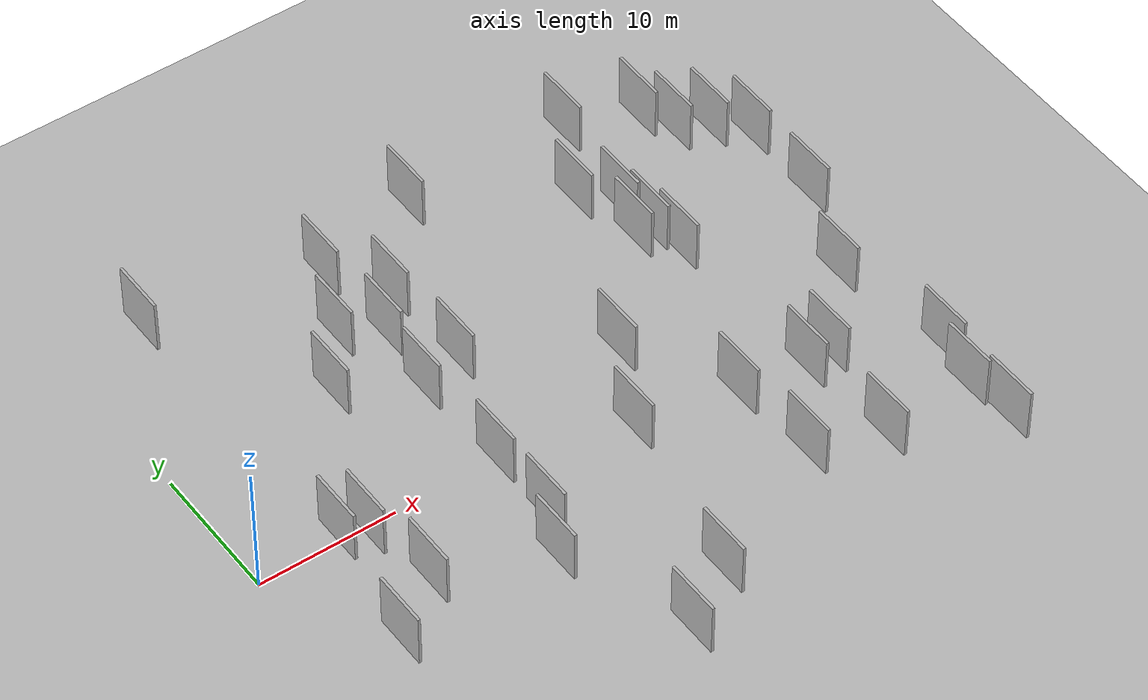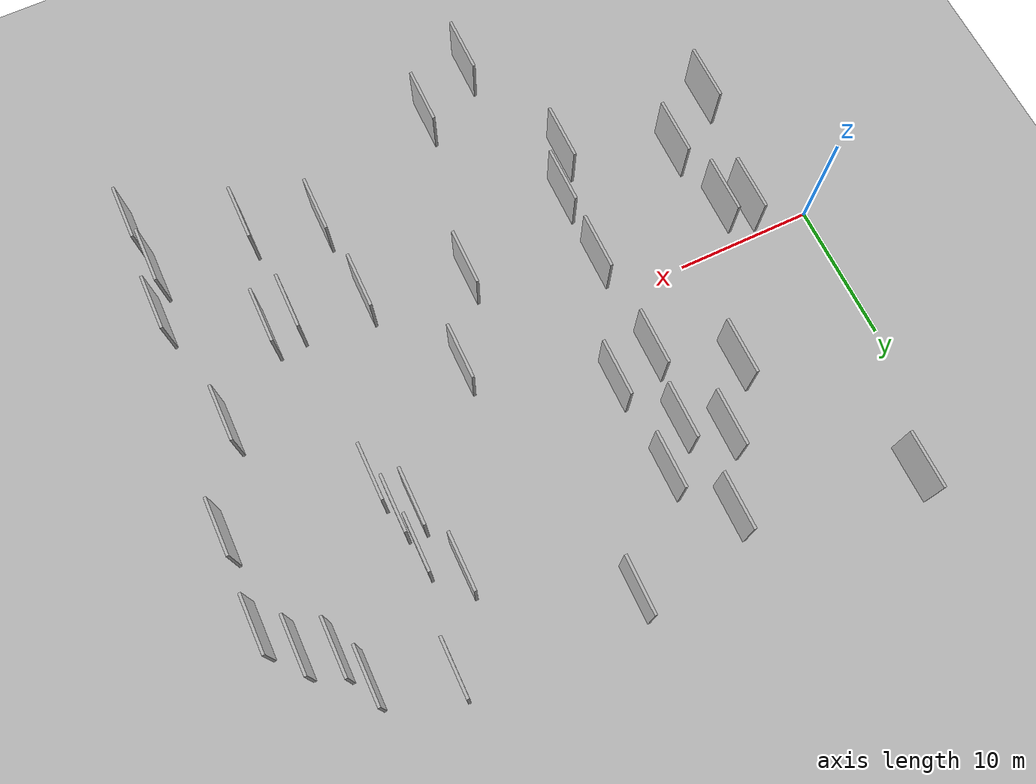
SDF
<?xml version="1.0" encoding="utf-8"?>

<sdf version="1.6">

   <world name="default">

      <gui fullscreen="0">

         <camera name="user_camera">

            <pose>-15 0 4.57585 0 0 0</pose>

            <view_controller>orbit</view_controller>

         </camera>

      </gui>

      <scene>

         <sky>

           <clouds>

             <speed>12</speed>

           </clouds>

         </sky>

         <ambient>0.4 0.4 0.4 1</ambient>

         <background>0.7 0.7 0.7 1</background>

         <shadows>1</shadows>

      </scene>

      <gravity>0 0 -9.8066</gravity>

      <magnetic_field>6e-06 2.3e-05 -4.2e-05</magnetic_field>

      <physics default="0" name="default_physics" type="ode">

         <ode>

            <solver>

               <type>quick</type>

               <iters>10</iters>

               <sor>1.0</sor>

               <use_dynamic_moi_rescaling>0</use_dynamic_moi_rescaling>

            </solver>

            <constraints>

               <cfm>0</cfm>

               <erp>0.2</erp>

               <contact_max_correcting_vel>100</contact_max_correcting_vel>

               <contact_surface_layer>0.001</contact_surface_layer>

            </constraints>

         </ode>

         <max_step_size>0.004</max_step_size>

         <real_time_factor>1</real_time_factor>

         <real_time_update_rate>250</real_time_update_rate>

      </physics>

      <light name="sun" type="directional">

         <cast_shadows>1</cast_shadows>

         <pose>0 0 10 0 0 0</pose>

         <diffuse>0.8 0.8 0.8 1</diffuse>

         <specular>0.2 0.2 0.2 1</specular>

         <attenuation>

            <range>1000</range>

            <constant>0.9</constant>

            <linear>0.01</linear>

            <quadratic>0.001</quadratic>

         </attenuation>

         <direction>-0.5 0.1 -0.9</direction>

      </light>

      <include>

         <name>ground_plane_1</name>

         <uri>model://HANNAS_ground_plane</uri>

         <pose>0 0 0  0 0 0</pose>

      </include>

      <include>

         <name>ground_plane_2</name>

         <uri>model://HANNAS_ground_plane</uri>

         <pose>100 0 0  0 0 0</pose>

      </include>

      <model name="HANNAS_wall_1">

         <static>1</static>

         <pose frame="">44.4189 -10.5357 2.5 0.000000 0.000000 1.570796</pose>

         <link name="link">

            <pose frame="">0 0 2.00 0 0 0</pose>

            <collision name="collision">

               <geometry>

                  <box>

                     <size>4.00 0.2 4.00</size>

                  </box>

               </geometry>

               <max_contacts>10</max_contacts>

               <surface>

                  <contact>

                     <ode/>

                  </contact>

                  <bounce/>

                  <friction>

                     <torsional>

                        <ode/>

                     </torsional>

                     <ode/>

                  </friction>

               </surface>

            </collision>

            <visual name="visual">

               <cast_shadows>0</cast_shadows>

               <geometry>

                  <box>

                     <size>4.00 0.2 4.00</size>

                  </box>

               </geometry>

               <material>

                  <script>

                     <uri>model://HANNAS_wall/materials/scripts</uri>

                     <uri>model://HANNAS_wall/materials/textures</uri>

                     <name>vrc/HANNAS_wall</name>

                  </script>

               </material>

            </visual>

            <self_collide>0</self_collide>

            <enable_wind>0</enable_wind>

            <kinematic>0</kinematic>

         </link>

      </model>

      <model name="HANNAS_wall_2">

         <static>1</static>

         <pose frame="">19.0102 6.3802 2.5 0.000000 0.000000 1.570796</pose>

         <link name="link">

            <pose frame="">0 0 2.00 0 0 0</pose>

            <collision name="collision">

               <geometry>

                  <box>

                     <size>4.00 0.2 4.00</size>

                  </box>

               </geometry>

               <max_contacts>10</max_contacts>

               <surface>

                  <contact>

                     <ode/>

                  </contact>

                  <bounce/>

                  <friction>

                     <torsional>

                        <ode/>

                     </torsional>

                     <ode/>

                  </friction>

               </surface>

            </collision>

            <visual name="visual">

               <cast_shadows>0</cast_shadows>

               <geometry>

                  <box>

                     <size>4.00 0.2 4.00</size>

                  </box>

               </geometry>

               <material>

                  <script>

                     <uri>model://HANNAS_wall/materials/scripts</uri>

                     <uri>model://HANNAS_wall/materials/textures</uri>

                     <name>vrc/HANNAS_wall</name>

                  </script>

               </material>

            </visual>

            <self_collide>0</self_collide>

            <enable_wind>0</enable_wind>

            <kinematic>0</kinematic>

         </link>

      </model>

      <model name="HANNAS_wall_3">

         <static>1</static>

         <pose frame="">16.1510 17.2574 2.5 0.000000 0.000000 1.570796</pose>

         <link name="link">

            <pose frame="">0 0 2.00 0 0 0</pose>

            <collision name="collision">

               <geometry>

                  <box>

                     <size>4.00 0.2 4.00</size>

                  </box>

               </geometry>

               <max_contacts>10</max_contacts>

               <surface>

                  <contact>

                     <ode/>

                  </contact>

                  <bounce/>

                  <friction>

                     <torsional>

                        <ode/>

                     </torsional>

                     <ode/>

                  </friction>

               </surface>

            </collision>

            <visual name="visual">

               <cast_shadows>0</cast_shadows>

               <geometry>

                  <box>

                     <size>4.00 0.2 4.00</size>

                  </box>

               </geometry>

               <material>

                  <script>

                     <uri>model://HANNAS_wall/materials/scripts</uri>

                     <uri>model://HANNAS_wall/materials/textures</uri>

                     <name>vrc/HANNAS_wall</name>

                  </script>

               </material>

            </visual>

            <self_collide>0</self_collide>

            <enable_wind>0</enable_wind>

            <kinematic>0</kinematic>

         </link>

      </model>

      <model name="HANNAS_wall_4">

         <static>1</static>

         <pose frame="">11.0804 8.4962 2.5 0.000000 0.000000 1.570796</pose>

         <link name="link">

            <pose frame="">0 0 2.00 0 0 0</pose>

            <collision name="collision">

               <geometry>

                  <box>

                     <size>4.00 0.2 4.00</size>

                  </box>

               </geometry>

               <max_contacts>10</max_contacts>

               <surface>

                  <contact>

                     <ode/>

                  </contact>

                  <bounce/>

                  <friction>

                     <torsional>

                        <ode/>

                     </torsional>

                     <ode/>

                  </friction>

               </surface>

            </collision>

            <visual name="visual">

               <cast_shadows>0</cast_shadows>

               <geometry>

                  <box>

                     <size>4.00 0.2 4.00</size>

                  </box>

               </geometry>

               <material>

                  <script>

                     <uri>model://HANNAS_wall/materials/scripts</uri>

                     <uri>model://HANNAS_wall/materials/textures</uri>

                     <name>vrc/HANNAS_wall</name>

                  </script>

               </material>

            </visual>

            <self_collide>0</self_collide>

            <enable_wind>0</enable_wind>

            <kinematic>0</kinematic>

         </link>

      </model>

      <model name="HANNAS_wall_5">

         <static>1</static>

         <pose frame="">7.4637 -7.5072 2.5 0.000000 0.000000 1.570796</pose>

         <link name="link">

            <pose frame="">0 0 2.00 0 0 0</pose>

            <collision name="collision">

               <geometry>

                  <box>

                     <size>4.00 0.2 4.00</size>

                  </box>

               </geometry>

               <max_contacts>10</max_contacts>

               <surface>

                  <contact>

                     <ode/>

                  </contact>

                  <bounce/>

                  <friction>

                     <torsional>

                        <ode/>

                     </torsional>

                     <ode/>

                  </friction>

               </surface>

            </collision>

            <visual name="visual">

               <cast_shadows>0</cast_shadows>

               <geometry>

                  <box>

                     <size>4.00 0.2 4.00</size>

                  </box>

               </geometry>

               <material>

                  <script>

                     <uri>model://HANNAS_wall/materials/scripts</uri>

                     <uri>model://HANNAS_wall/materials/textures</uri>

                     <name>vrc/HANNAS_wall</name>

                  </script>

               </material>

            </visual>

            <self_collide>0</self_collide>

            <enable_wind>0</enable_wind>

            <kinematic>0</kinematic>

         </link>

      </model>

      <model name="HANNAS_wall_6">

         <static>1</static>

         <pose frame="">36.9641 -14.2212 2.5 0.000000 0.000000 1.570796</pose>

         <link name="link">

            <pose frame="">0 0 2.00 0 0 0</pose>

            <collision name="collision">

               <geometry>

                  <box>

                     <size>4.00 0.2 4.00</size>

                  </box>

               </geometry>

               <max_contacts>10</max_contacts>

               <surface>

                  <contact>

                     <ode/>

                  </contact>

                  <bounce/>

                  <friction>

                     <torsional>

                        <ode/>

                     </torsional>

                     <ode/>

                  </friction>

               </surface>

            </collision>

            <visual name="visual">

               <cast_shadows>0</cast_shadows>

               <geometry>

                  <box>

                     <size>4.00 0.2 4.00</size>

                  </box>

               </geometry>

               <material>

                  <script>

                     <uri>model://HANNAS_wall/materials/scripts</uri>

                     <uri>model://HANNAS_wall/materials/textures</uri>

                     <name>vrc/HANNAS_wall</name>

                  </script>

               </material>

            </visual>

            <self_collide>0</self_collide>

            <enable_wind>0</enable_wind>

            <kinematic>0</kinematic>

         </link>

      </model>

      <model name="HANNAS_wall_7">

         <static>1</static>

         <pose frame="">16.5284 10.6545 2.5 0.000000 0.000000 1.570796</pose>

         <link name="link">

            <pose frame="">0 0 2.00 0 0 0</pose>

            <collision name="collision">

               <geometry>

                  <box>

                     <size>4.00 0.2 4.00</size>

                  </box>

               </geometry>

               <max_contacts>10</max_contacts>

               <surface>

                  <contact>

                     <ode/>

                  </contact>

                  <bounce/>

                  <friction>

                     <torsional>

                        <ode/>

                     </torsional>

                     <ode/>

                  </friction>

               </surface>

            </collision>

            <visual name="visual">

               <cast_shadows>0</cast_shadows>

               <geometry>

                  <box>

                     <size>4.00 0.2 4.00</size>

                  </box>

               </geometry>

               <material>

                  <script>

                     <uri>model://HANNAS_wall/materials/scripts</uri>

                     <uri>model://HANNAS_wall/materials/textures</uri>

                     <name>vrc/HANNAS_wall</name>

                  </script>

               </material>

            </visual>

            <self_collide>0</self_collide>

            <enable_wind>0</enable_wind>

            <kinematic>0</kinematic>

         </link>

      </model>

      <model name="HANNAS_wall_8">

         <static>1</static>

         <pose frame="">15.8831 5.4989 2.5 0.000000 0.000000 1.570796</pose>

         <link name="link">

            <pose frame="">0 0 2.00 0 0 0</pose>

            <collision name="collision">

               <geometry>

                  <box>

                     <size>4.00 0.2 4.00</size>

                  </box>

               </geometry>

               <max_contacts>10</max_contacts>

               <surface>

                  <contact>

                     <ode/>

                  </contact>

                  <bounce/>

                  <friction>

                     <torsional>

                        <ode/>

                     </torsional>

                     <ode/>

                  </friction>

               </surface>

            </collision>

            <visual name="visual">

               <cast_shadows>0</cast_shadows>

               <geometry>

                  <box>

                     <size>4.00 0.2 4.00</size>

                  </box>

               </geometry>

               <material>

                  <script>

                     <uri>model://HANNAS_wall/materials/scripts</uri>

                     <uri>model://HANNAS_wall/materials/textures</uri>

                     <name>vrc/HANNAS_wall</name>

                  </script>

               </material>

            </visual>

            <self_collide>0</self_collide>

            <enable_wind>0</enable_wind>

            <kinematic>0</kinematic>

         </link>

      </model>

      <model name="HANNAS_wall_9">

         <static>1</static>

         <pose frame="">34.2519 8.4210 2.5 0.000000 0.000000 1.570796</pose>

         <link name="link">

            <pose frame="">0 0 2.00 0 0 0</pose>

            <collision name="collision">

               <geometry>

                  <box>

                     <size>4.00 0.2 4.00</size>

                  </box>

               </geometry>

               <max_contacts>10</max_contacts>

               <surface>

                  <contact>

                     <ode/>

                  </contact>

                  <bounce/>

                  <friction>

                     <torsional>

                        <ode/>

                     </torsional>

                     <ode/>

                  </friction>

               </surface>

            </collision>

            <visual name="visual">

               <cast_shadows>0</cast_shadows>

               <geometry>

                  <box>

                     <size>4.00 0.2 4.00</size>

                  </box>

               </geometry>

               <material>

                  <script>

                     <uri>model://HANNAS_wall/materials/scripts</uri>

                     <uri>model://HANNAS_wall/materials/textures</uri>

                     <name>vrc/HANNAS_wall</name>

                  </script>

               </material>

            </visual>

            <self_collide>0</self_collide>

            <enable_wind>0</enable_wind>

            <kinematic>0</kinematic>

         </link>

      </model>

      <model name="HANNAS_wall_10">

         <static>1</static>

         <pose frame="">31.5944 -6.2207 2.5 0.000000 0.000000 1.570796</pose>

         <link name="link">

            <pose frame="">0 0 2.00 0 0 0</pose>

            <collision name="collision">

               <geometry>

                  <box>

                     <size>4.00 0.2 4.00</size>

                  </box>

               </geometry>

               <max_contacts>10</max_contacts>

               <surface>

                  <contact>

                     <ode/>

                  </contact>

                  <bounce/>

                  <friction>

                     <torsional>

                        <ode/>

                     </torsional>

                     <ode/>

                  </friction>

               </surface>

            </collision>

            <visual name="visual">

               <cast_shadows>0</cast_shadows>

               <geometry>

                  <box>

                     <size>4.00 0.2 4.00</size>

                  </box>

               </geometry>

               <material>

                  <script>

                     <uri>model://HANNAS_wall/materials/scripts</uri>

                     <uri>model://HANNAS_wall/materials/textures</uri>

                     <name>vrc/HANNAS_wall</name>

                  </script>

               </material>

            </visual>

            <self_collide>0</self_collide>

            <enable_wind>0</enable_wind>

            <kinematic>0</kinematic>

         </link>

      </model>

      <model name="HANNAS_wall_11">

         <static>1</static>

         <pose frame="">35.1379 11.1432 2.5 0.000000 0.000000 1.570796</pose>

         <link name="link">

            <pose frame="">0 0 2.00 0 0 0</pose>

            <collision name="collision">

               <geometry>

                  <box>

                     <size>4.00 0.2 4.00</size>

                  </box>

               </geometry>

               <max_contacts>10</max_contacts>

               <surface>

                  <contact>

                     <ode/>

                  </contact>

                  <bounce/>

                  <friction>

                     <torsional>

                        <ode/>

                     </torsional>

                     <ode/>

                  </friction>

               </surface>

            </collision>

            <visual name="visual">

               <cast_shadows>0</cast_shadows>

               <geometry>

                  <box>

                     <size>4.00 0.2 4.00</size>

                  </box>

               </geometry>

               <material>

                  <script>

                     <uri>model://HANNAS_wall/materials/scripts</uri>

                     <uri>model://HANNAS_wall/materials/textures</uri>

                     <name>vrc/HANNAS_wall</name>

                  </script>

               </material>

            </visual>

            <self_collide>0</self_collide>

            <enable_wind>0</enable_wind>

            <kinematic>0</kinematic>

         </link>

      </model>

      <model name="HANNAS_wall_12">

         <static>1</static>

         <pose frame="">32.1168 -12.5971 2.5 0.000000 0.000000 1.570796</pose>

         <link name="link">

            <pose frame="">0 0 2.00 0 0 0</pose>

            <collision name="collision">

               <geometry>

                  <box>

                     <size>4.00 0.2 4.00</size>

                  </box>

               </geometry>

               <max_contacts>10</max_contacts>

               <surface>

                  <contact>

                     <ode/>

                  </contact>

                  <bounce/>

                  <friction>

                     <torsional>

                        <ode/>

                     </torsional>

                     <ode/>

                  </friction>

               </surface>

            </collision>

            <visual name="visual">

               <cast_shadows>0</cast_shadows>

               <geometry>

                  <box>

                     <size>4.00 0.2 4.00</size>

                  </box>

               </geometry>

               <material>

                  <script>

                     <uri>model://HANNAS_wall/materials/scripts</uri>

                     <uri>model://HANNAS_wall/materials/textures</uri>

                     <name>vrc/HANNAS_wall</name>

                  </script>

               </material>

            </visual>

            <self_collide>0</self_collide>

            <enable_wind>0</enable_wind>

            <kinematic>0</kinematic>

         </link>

      </model>

      <model name="HANNAS_wall_13">

         <static>1</static>

         <pose frame="">16.1172 -7.4408 2.5 0.000000 0.000000 1.570796</pose>

         <link name="link">

            <pose frame="">0 0 2.00 0 0 0</pose>

            <collision name="collision">

               <geometry>

                  <box>

                     <size>4.00 0.2 4.00</size>

                  </box>

               </geometry>

               <max_contacts>10</max_contacts>

               <surface>

                  <contact>

                     <ode/>

                  </contact>

                  <bounce/>

                  <friction>

                     <torsional>

                        <ode/>

                     </torsional>

                     <ode/>

                  </friction>

               </surface>

            </collision>

            <visual name="visual">

               <cast_shadows>0</cast_shadows>

               <geometry>

                  <box>

                     <size>4.00 0.2 4.00</size>

                  </box>

               </geometry>

               <material>

                  <script>

                     <uri>model://HANNAS_wall/materials/scripts</uri>

                     <uri>model://HANNAS_wall/materials/textures</uri>

                     <name>vrc/HANNAS_wall</name>

                  </script>

               </material>

            </visual>

            <self_collide>0</self_collide>

            <enable_wind>0</enable_wind>

            <kinematic>0</kinematic>

         </link>

      </model>

      <model name="HANNAS_wall_14">

         <static>1</static>

         <pose frame="">45.9251 11.4316 2.5 0.000000 0.000000 1.570796</pose>

         <link name="link">

            <pose frame="">0 0 2.00 0 0 0</pose>

            <collision name="collision">

               <geometry>

                  <box>

                     <size>4.00 0.2 4.00</size>

                  </box>

               </geometry>

               <max_contacts>10</max_contacts>

               <surface>

                  <contact>

                     <ode/>

                  </contact>

                  <bounce/>

                  <friction>

                     <torsional>

                        <ode/>

                     </torsional>

                     <ode/>

                  </friction>

               </surface>

            </collision>

            <visual name="visual">

               <cast_shadows>0</cast_shadows>

               <geometry>

                  <box>

                     <size>4.00 0.2 4.00</size>

                  </box>

               </geometry>

               <material>

                  <script>

                     <uri>model://HANNAS_wall/materials/scripts</uri>

                     <uri>model://HANNAS_wall/materials/textures</uri>

                     <name>vrc/HANNAS_wall</name>

                  </script>

               </material>

            </visual>

            <self_collide>0</self_collide>

            <enable_wind>0</enable_wind>

            <kinematic>0</kinematic>

         </link>

      </model>

      <model name="HANNAS_wall_15">

         <static>1</static>

         <pose frame="">33.1199 13.3673 2.5 0.000000 0.000000 1.570796</pose>

         <link name="link">

            <pose frame="">0 0 2.00 0 0 0</pose>

            <collision name="collision">

               <geometry>

                  <box>

                     <size>4.00 0.2 4.00</size>

                  </box>

               </geometry>

               <max_contacts>10</max_contacts>

               <surface>

                  <contact>

                     <ode/>

                  </contact>

                  <bounce/>

                  <friction>

                     <torsional>

                        <ode/>

                     </torsional>

                     <ode/>

                  </friction>

               </surface>

            </collision>

            <visual name="visual">

               <cast_shadows>0</cast_shadows>

               <geometry>

                  <box>

                     <size>4.00 0.2 4.00</size>

                  </box>

               </geometry>

               <material>

                  <script>

                     <uri>model://HANNAS_wall/materials/scripts</uri>

                     <uri>model://HANNAS_wall/materials/textures</uri>

                     <name>vrc/HANNAS_wall</name>

                  </script>

               </material>

            </visual>

            <self_collide>0</self_collide>

            <enable_wind>0</enable_wind>

            <kinematic>0</kinematic>

         </link>

      </model>

      <model name="HANNAS_wall_16">

         <static>1</static>

         <pose frame="">18.7229 13.1875 2.5 0.000000 0.000000 1.570796</pose>

         <link name="link">

            <pose frame="">0 0 2.00 0 0 0</pose>

            <collision name="collision">

               <geometry>

                  <box>

                     <size>4.00 0.2 4.00</size>

                  </box>

               </geometry>

               <max_contacts>10</max_contacts>

               <surface>

                  <contact>

                     <ode/>

                  </contact>

                  <bounce/>

                  <friction>

                     <torsional>

                        <ode/>

                     </torsional>

                     <ode/>

                  </friction>

               </surface>

            </collision>

            <visual name="visual">

               <cast_shadows>0</cast_shadows>

               <geometry>

                  <box>

                     <size>4.00 0.2 4.00</size>

                  </box>

               </geometry>

               <material>

                  <script>

                     <uri>model://HANNAS_wall/materials/scripts</uri>

                     <uri>model://HANNAS_wall/materials/textures</uri>

                     <name>vrc/HANNAS_wall</name>

                  </script>

               </material>

            </visual>

            <self_collide>0</self_collide>

            <enable_wind>0</enable_wind>

            <kinematic>0</kinematic>

         </link>

      </model>

      <model name="HANNAS_wall_17">

         <static>1</static>

         <pose frame="">35.9671 5.8900 2.5 0.000000 0.000000 1.570796</pose>

         <link name="link">

            <pose frame="">0 0 2.00 0 0 0</pose>

            <collision name="collision">

               <geometry>

                  <box>

                     <size>4.00 0.2 4.00</size>

                  </box>

               </geometry>

               <max_contacts>10</max_contacts>

               <surface>

                  <contact>

                     <ode/>

                  </contact>

                  <bounce/>

                  <friction>

                     <torsional>

                        <ode/>

                     </torsional>

                     <ode/>

                  </friction>

               </surface>

            </collision>

            <visual name="visual">

               <cast_shadows>0</cast_shadows>

               <geometry>

                  <box>

                     <size>4.00 0.2 4.00</size>

                  </box>

               </geometry>

               <material>

                  <script>

                     <uri>model://HANNAS_wall/materials/scripts</uri>

                     <uri>model://HANNAS_wall/materials/textures</uri>

                     <name>vrc/HANNAS_wall</name>

                  </script>

               </material>

            </visual>

            <self_collide>0</self_collide>

            <enable_wind>0</enable_wind>

            <kinematic>0</kinematic>

         </link>

      </model>

      <model name="HANNAS_wall_18">

         <static>1</static>

         <pose frame="">4.3287 19.9816 2.5 0.000000 0.000000 1.570796</pose>

         <link name="link">

            <pose frame="">0 0 2.00 0 0 0</pose>

            <collision name="collision">

               <geometry>

                  <box>

                     <size>4.00 0.2 4.00</size>

                  </box>

               </geometry>

               <max_contacts>10</max_contacts>

               <surface>

                  <contact>

                     <ode/>

                  </contact>

                  <bounce/>

                  <friction>

                     <torsional>

                        <ode/>

                     </torsional>

                     <ode/>

                  </friction>

               </surface>

            </collision>

            <visual name="visual">

               <cast_shadows>0</cast_shadows>

               <geometry>

                  <box>

                     <size>4.00 0.2 4.00</size>

                  </box>

               </geometry>

               <material>

                  <script>

                     <uri>model://HANNAS_wall/materials/scripts</uri>

                     <uri>model://HANNAS_wall/materials/textures</uri>

                     <name>vrc/HANNAS_wall</name>

                  </script>

               </material>

            </visual>

            <self_collide>0</self_collide>

            <enable_wind>0</enable_wind>

            <kinematic>0</kinematic>

         </link>

      </model>

      <model name="HANNAS_wall_19">

         <static>1</static>

         <pose frame="">36.4033 -6.9017 2.5 0.000000 0.000000 1.570796</pose>

         <link name="link">

            <pose frame="">0 0 2.00 0 0 0</pose>

            <collision name="collision">

               <geometry>

                  <box>

                     <size>4.00 0.2 4.00</size>

                  </box>

               </geometry>

               <max_contacts>10</max_contacts>

               <surface>

                  <contact>

                     <ode/>

                  </contact>

                  <bounce/>

                  <friction>

                     <torsional>

                        <ode/>

                     </torsional>

                     <ode/>

                  </friction>

               </surface>

            </collision>

            <visual name="visual">

               <cast_shadows>0</cast_shadows>

               <geometry>

                  <box>

                     <size>4.00 0.2 4.00</size>

                  </box>

               </geometry>

               <material>

                  <script>

                     <uri>model://HANNAS_wall/materials/scripts</uri>

                     <uri>model://HANNAS_wall/materials/textures</uri>

                     <name>vrc/HANNAS_wall</name>

                  </script>

               </material>

            </visual>

            <self_collide>0</self_collide>

            <enable_wind>0</enable_wind>

            <kinematic>0</kinematic>

         </link>

      </model>

      <model name="HANNAS_wall_20">

         <static>1</static>

         <pose frame="">4.8397 -1.5209 2.5 0.000000 0.000000 1.570796</pose>

         <link name="link">

            <pose frame="">0 0 2.00 0 0 0</pose>

            <collision name="collision">

               <geometry>

                  <box>

                     <size>4.00 0.2 4.00</size>

                  </box>

               </geometry>

               <max_contacts>10</max_contacts>

               <surface>

                  <contact>

                     <ode/>

                  </contact>

                  <bounce/>

                  <friction>

                     <torsional>

                        <ode/>

                     </torsional>

                     <ode/>

                  </friction>

               </surface>

            </collision>

            <visual name="visual">

               <cast_shadows>0</cast_shadows>

               <geometry>

                  <box>

                     <size>4.00 0.2 4.00</size>

                  </box>

               </geometry>

               <material>

                  <script>

                     <uri>model://HANNAS_wall/materials/scripts</uri>

                     <uri>model://HANNAS_wall/materials/textures</uri>

                     <name>vrc/HANNAS_wall</name>

                  </script>

               </material>

            </visual>

            <self_collide>0</self_collide>

            <enable_wind>0</enable_wind>

            <kinematic>0</kinematic>

         </link>

      </model>

      <model name="HANNAS_wall_21">

         <static>1</static>

         <pose frame="">27.6329 1.0886 2.5 0.000000 0.000000 1.570796</pose>

         <link name="link">

            <pose frame="">0 0 2.00 0 0 0</pose>

            <collision name="collision">

               <geometry>

                  <box>

                     <size>4.00 0.2 4.00</size>

                  </box>

               </geometry>

               <max_contacts>10</max_contacts>

               <surface>

                  <contact>

                     <ode/>

                  </contact>

                  <bounce/>

                  <friction>

                     <torsional>

                        <ode/>

                     </torsional>

                     <ode/>

                  </friction>

               </surface>

            </collision>

            <visual name="visual">

               <cast_shadows>0</cast_shadows>

               <geometry>

                  <box>

                     <size>4.00 0.2 4.00</size>

                  </box>

               </geometry>

               <material>

                  <script>

                     <uri>model://HANNAS_wall/materials/scripts</uri>

                     <uri>model://HANNAS_wall/materials/textures</uri>

                     <name>vrc/HANNAS_wall</name>

                  </script>

               </material>

            </visual>

            <self_collide>0</self_collide>

            <enable_wind>0</enable_wind>

            <kinematic>0</kinematic>

         </link>

      </model>

      <model name="HANNAS_wall_22">

         <static>1</static>

         <pose frame="">13.9775 12.3868 2.5 0.000000 0.000000 1.570796</pose>

         <link name="link">

            <pose frame="">0 0 2.00 0 0 0</pose>

            <collision name="collision">

               <geometry>

                  <box>

                     <size>4.00 0.2 4.00</size>

                  </box>

               </geometry>

               <max_contacts>10</max_contacts>

               <surface>

                  <contact>

                     <ode/>

                  </contact>

                  <bounce/>

                  <friction>

                     <torsional>

                        <ode/>

                     </torsional>

                     <ode/>

                  </friction>

               </surface>

            </collision>

            <visual name="visual">

               <cast_shadows>0</cast_shadows>

               <geometry>

                  <box>

                     <size>4.00 0.2 4.00</size>

                  </box>

               </geometry>

               <material>

                  <script>

                     <uri>model://HANNAS_wall/materials/scripts</uri>

                     <uri>model://HANNAS_wall/materials/textures</uri>

                     <name>vrc/HANNAS_wall</name>

                  </script>

               </material>

            </visual>

            <self_collide>0</self_collide>

            <enable_wind>0</enable_wind>

            <kinematic>0</kinematic>

         </link>

      </model>

      <model name="HANNAS_wall_23">

         <static>1</static>

         <pose frame="">35.4626 8.3334 2.5 0.000000 0.000000 1.570796</pose>

         <link name="link">

            <pose frame="">0 0 2.00 0 0 0</pose>

            <collision name="collision">

               <geometry>

                  <box>

                     <size>4.00 0.2 4.00</size>

                  </box>

               </geometry>

               <max_contacts>10</max_contacts>

               <surface>

                  <contact>

                     <ode/>

                  </contact>

                  <bounce/>

                  <friction>

                     <torsional>

                        <ode/>

                     </torsional>

                     <ode/>

                  </friction>

               </surface>

            </collision>

            <visual name="visual">

               <cast_shadows>0</cast_shadows>

               <geometry>

                  <box>

                     <size>4.00 0.2 4.00</size>

                  </box>

               </geometry>

               <material>

                  <script>

                     <uri>model://HANNAS_wall/materials/scripts</uri>

                     <uri>model://HANNAS_wall/materials/textures</uri>

                     <name>vrc/HANNAS_wall</name>

                  </script>

               </material>

            </visual>

            <self_collide>0</self_collide>

            <enable_wind>0</enable_wind>

            <kinematic>0</kinematic>

         </link>

      </model>

      <model name="HANNAS_wall_24">

         <static>1</static>

         <pose frame="">38.3043 -6.6777 2.5 0.000000 0.000000 1.570796</pose>

         <link name="link">

            <pose frame="">0 0 2.00 0 0 0</pose>

            <collision name="collision">

               <geometry>

                  <box>

                     <size>4.00 0.2 4.00</size>

                  </box>

               </geometry>

               <max_contacts>10</max_contacts>

               <surface>

                  <contact>

                     <ode/>

                  </contact>

                  <bounce/>

                  <friction>

                     <torsional>

                        <ode/>

                     </torsional>

                     <ode/>

                  </friction>

               </surface>

            </collision>

            <visual name="visual">

               <cast_shadows>0</cast_shadows>

               <geometry>

                  <box>

                     <size>4.00 0.2 4.00</size>

                  </box>

               </geometry>

               <material>

                  <script>

                     <uri>model://HANNAS_wall/materials/scripts</uri>

                     <uri>model://HANNAS_wall/materials/textures</uri>

                     <name>vrc/HANNAS_wall</name>

                  </script>

               </material>

            </visual>

            <self_collide>0</self_collide>

            <enable_wind>0</enable_wind>

            <kinematic>0</kinematic>

         </link>

      </model>

      <model name="HANNAS_wall_25">

         <static>1</static>

         <pose frame="">24.0083 19.2403 2.5 0.000000 0.000000 1.570796</pose>

         <link name="link">

            <pose frame="">0 0 2.00 0 0 0</pose>

            <collision name="collision">

               <geometry>

                  <box>

                     <size>4.00 0.2 4.00</size>

                  </box>

               </geometry>

               <max_contacts>10</max_contacts>

               <surface>

                  <contact>

                     <ode/>

                  </contact>

                  <bounce/>

                  <friction>

                     <torsional>

                        <ode/>

                     </torsional>

                     <ode/>

                  </friction>

               </surface>

            </collision>

            <visual name="visual">

               <cast_shadows>0</cast_shadows>

               <geometry>

                  <box>

                     <size>4.00 0.2 4.00</size>

                  </box>

               </geometry>

               <material>

                  <script>

                     <uri>model://HANNAS_wall/materials/scripts</uri>

                     <uri>model://HANNAS_wall/materials/textures</uri>

                     <name>vrc/HANNAS_wall</name>

                  </script>

               </material>

            </visual>

            <self_collide>0</self_collide>

            <enable_wind>0</enable_wind>

            <kinematic>0</kinematic>

         </link>

      </model>

      <model name="HANNAS_wall_26">

         <static>1</static>

         <pose frame="">43.6344 -13.8992 2.5 0.000000 0.000000 1.570796</pose>

         <link name="link">

            <pose frame="">0 0 2.00 0 0 0</pose>

            <collision name="collision">

               <geometry>

                  <box>

                     <size>4.00 0.2 4.00</size>

                  </box>

               </geometry>

               <max_contacts>10</max_contacts>

               <surface>

                  <contact>

                     <ode/>

                  </contact>

                  <bounce/>

                  <friction>

                     <torsional>

                        <ode/>

                     </torsional>

                     <ode/>

                  </friction>

               </surface>

            </collision>

            <visual name="visual">

               <cast_shadows>0</cast_shadows>

               <geometry>

                  <box>

                     <size>4.00 0.2 4.00</size>

                  </box>

               </geometry>

               <material>

                  <script>

                     <uri>model://HANNAS_wall/materials/scripts</uri>

                     <uri>model://HANNAS_wall/materials/textures</uri>

                     <name>vrc/HANNAS_wall</name>

                  </script>

               </material>

            </visual>

            <self_collide>0</self_collide>

            <enable_wind>0</enable_wind>

            <kinematic>0</kinematic>

         </link>

      </model>

      <model name="HANNAS_wall_27">

         <static>1</static>

         <pose frame="">45.7698 5.0803 2.5 0.000000 0.000000 1.570796</pose>

         <link name="link">

            <pose frame="">0 0 2.00 0 0 0</pose>

            <collision name="collision">

               <geometry>

                  <box>

                     <size>4.00 0.2 4.00</size>

                  </box>

               </geometry>

               <max_contacts>10</max_contacts>

               <surface>

                  <contact>

                     <ode/>

                  </contact>

                  <bounce/>

                  <friction>

                     <torsional>

                        <ode/>

                     </torsional>

                     <ode/>

                  </friction>

               </surface>

            </collision>

            <visual name="visual">

               <cast_shadows>0</cast_shadows>

               <geometry>

                  <box>

                     <size>4.00 0.2 4.00</size>

                  </box>

               </geometry>

               <material>

                  <script>

                     <uri>model://HANNAS_wall/materials/scripts</uri>

                     <uri>model://HANNAS_wall/materials/textures</uri>

                     <name>vrc/HANNAS_wall</name>

                  </script>

               </material>

            </visual>

            <self_collide>0</self_collide>

            <enable_wind>0</enable_wind>

            <kinematic>0</kinematic>

         </link>

      </model>

      <model name="HANNAS_wall_28">

         <static>1</static>

         <pose frame="">6.5296 -2.1680 2.5 0.000000 0.000000 1.570796</pose>

         <link name="link">

            <pose frame="">0 0 2.00 0 0 0</pose>

            <collision name="collision">

               <geometry>

                  <box>

                     <size>4.00 0.2 4.00</size>

                  </box>

               </geometry>

               <max_contacts>10</max_contacts>

               <surface>

                  <contact>

                     <ode/>

                  </contact>

                  <bounce/>

                  <friction>

                     <torsional>

                        <ode/>

                     </torsional>

                     <ode/>

                  </friction>

               </surface>

            </collision>

            <visual name="visual">

               <cast_shadows>0</cast_shadows>

               <geometry>

                  <box>

                     <size>4.00 0.2 4.00</size>

                  </box>

               </geometry>

               <material>

                  <script>

                     <uri>model://HANNAS_wall/materials/scripts</uri>

                     <uri>model://HANNAS_wall/materials/textures</uri>

                     <name>vrc/HANNAS_wall</name>

                  </script>

               </material>

            </visual>

            <self_collide>0</self_collide>

            <enable_wind>0</enable_wind>

            <kinematic>0</kinematic>

         </link>

      </model>

      <model name="HANNAS_wall_29">

         <static>1</static>

         <pose frame="">16.1606 -2.0522 2.5 0.000000 0.000000 1.570796</pose>

         <link name="link">

            <pose frame="">0 0 2.00 0 0 0</pose>

            <collision name="collision">

               <geometry>

                  <box>

                     <size>4.00 0.2 4.00</size>

                  </box>

               </geometry>

               <max_contacts>10</max_contacts>

               <surface>

                  <contact>

                     <ode/>

                  </contact>

                  <bounce/>

                  <friction>

                     <torsional>

                        <ode/>

                     </torsional>

                     <ode/>

                  </friction>

               </surface>

            </collision>

            <visual name="visual">

               <cast_shadows>0</cast_shadows>

               <geometry>

                  <box>

                     <size>4.00 0.2 4.00</size>

                  </box>

               </geometry>

               <material>

                  <script>

                     <uri>model://HANNAS_wall/materials/scripts</uri>

                     <uri>model://HANNAS_wall/materials/textures</uri>

                     <name>vrc/HANNAS_wall</name>

                  </script>

               </material>

            </visual>

            <self_collide>0</self_collide>

            <enable_wind>0</enable_wind>

            <kinematic>0</kinematic>

         </link>

      </model>

      <model name="HANNAS_wall_30">

         <static>1</static>

         <pose frame="">14.7116 -10.4472 2.5 0.000000 0.000000 1.570796</pose>

         <link name="link">

            <pose frame="">0 0 2.00 0 0 0</pose>

            <collision name="collision">

               <geometry>

                  <box>

                     <size>4.00 0.2 4.00</size>

                  </box>

               </geometry>

               <max_contacts>10</max_contacts>

               <surface>

                  <contact>

                     <ode/>

                  </contact>

                  <bounce/>

                  <friction>

                     <torsional>

                        <ode/>

                     </torsional>

                     <ode/>

                  </friction>

               </surface>

            </collision>

            <visual name="visual">

               <cast_shadows>0</cast_shadows>

               <geometry>

                  <box>

                     <size>4.00 0.2 4.00</size>

                  </box>

               </geometry>

               <material>

                  <script>

                     <uri>model://HANNAS_wall/materials/scripts</uri>

                     <uri>model://HANNAS_wall/materials/textures</uri>

                     <name>vrc/HANNAS_wall</name>

                  </script>

               </material>

            </visual>

            <self_collide>0</self_collide>

            <enable_wind>0</enable_wind>

            <kinematic>0</kinematic>

         </link>

      </model>

      <model name="HANNAS_wall_31">

         <static>1</static>

         <pose frame="">44.1422 13.6097 2.5 0.000000 0.000000 1.570796</pose>

         <link name="link">

            <pose frame="">0 0 2.00 0 0 0</pose>

            <collision name="collision">

               <geometry>

                  <box>

                     <size>4.00 0.2 4.00</size>

                  </box>

               </geometry>

               <max_contacts>10</max_contacts>

               <surface>

                  <contact>

                     <ode/>

                  </contact>

                  <bounce/>

                  <friction>

                     <torsional>

                        <ode/>

                     </torsional>

                     <ode/>

                  </friction>

               </surface>

            </collision>

            <visual name="visual">

               <cast_shadows>0</cast_shadows>

               <geometry>

                  <box>

                     <size>4.00 0.2 4.00</size>

                  </box>

               </geometry>

               <material>

                  <script>

                     <uri>model://HANNAS_wall/materials/scripts</uri>

                     <uri>model://HANNAS_wall/materials/textures</uri>

                     <name>vrc/HANNAS_wall</name>

                  </script>

               </material>

            </visual>

            <self_collide>0</self_collide>

            <enable_wind>0</enable_wind>

            <kinematic>0</kinematic>

         </link>

      </model>

      <model name="HANNAS_wall_32">

         <static>1</static>

         <pose frame="">40.9310 17.0685 2.5 0.000000 0.000000 1.570796</pose>

         <link name="link">

            <pose frame="">0 0 2.00 0 0 0</pose>

            <collision name="collision">

               <geometry>

                  <box>

                     <size>4.00 0.2 4.00</size>

                  </box>

               </geometry>

               <max_contacts>10</max_contacts>

               <surface>

                  <contact>

                     <ode/>

                  </contact>

                  <bounce/>

                  <friction>

                     <torsional>

                        <ode/>

                     </torsional>

                     <ode/>

                  </friction>

               </surface>

            </collision>

            <visual name="visual">

               <cast_shadows>0</cast_shadows>

               <geometry>

                  <box>

                     <size>4.00 0.2 4.00</size>

                  </box>

               </geometry>

               <material>

                  <script>

                     <uri>model://HANNAS_wall/materials/scripts</uri>

                     <uri>model://HANNAS_wall/materials/textures</uri>

                     <name>vrc/HANNAS_wall</name>

                  </script>

               </material>

            </visual>

            <self_collide>0</self_collide>

            <enable_wind>0</enable_wind>

            <kinematic>0</kinematic>

         </link>

      </model>

      <model name="HANNAS_wall_33">

         <static>1</static>

         <pose frame="">43.9913 -17.4991 2.5 0.000000 0.000000 1.570796</pose>

         <link name="link">

            <pose frame="">0 0 2.00 0 0 0</pose>

            <collision name="collision">

               <geometry>

                  <box>

                     <size>4.00 0.2 4.00</size>

                  </box>

               </geometry>

               <max_contacts>10</max_contacts>

               <surface>

                  <contact>

                     <ode/>

                  </contact>

                  <bounce/>

                  <friction>

                     <torsional>

                        <ode/>

                     </torsional>

                     <ode/>

                  </friction>

               </surface>

            </collision>

            <visual name="visual">

               <cast_shadows>0</cast_shadows>

               <geometry>

                  <box>

                     <size>4.00 0.2 4.00</size>

                  </box>

               </geometry>

               <material>

                  <script>

                     <uri>model://HANNAS_wall/materials/scripts</uri>

                     <uri>model://HANNAS_wall/materials/textures</uri>

                     <name>vrc/HANNAS_wall</name>

                  </script>

               </material>

            </visual>

            <self_collide>0</self_collide>

            <enable_wind>0</enable_wind>

            <kinematic>0</kinematic>

         </link>

      </model>

      <model name="HANNAS_wall_34">

         <static>1</static>

         <pose frame="">42.0345 14.7428 2.5 0.000000 0.000000 1.570796</pose>

         <link name="link">

            <pose frame="">0 0 2.00 0 0 0</pose>

            <collision name="collision">

               <geometry>

                  <box>

                     <size>4.00 0.2 4.00</size>

                  </box>

               </geometry>

               <max_contacts>10</max_contacts>

               <surface>

                  <contact>

                     <ode/>

                  </contact>

                  <bounce/>

                  <friction>

                     <torsional>

                        <ode/>

                     </torsional>

                     <ode/>

                  </friction>

               </surface>

            </collision>

            <visual name="visual">

               <cast_shadows>0</cast_shadows>

               <geometry>

                  <box>

                     <size>4.00 0.2 4.00</size>

                  </box>

               </geometry>

               <material>

                  <script>

                     <uri>model://HANNAS_wall/materials/scripts</uri>

                     <uri>model://HANNAS_wall/materials/textures</uri>

                     <name>vrc/HANNAS_wall</name>

                  </script>

               </material>

            </visual>

            <self_collide>0</self_collide>

            <enable_wind>0</enable_wind>

            <kinematic>0</kinematic>

         </link>

      </model>

      <model name="HANNAS_wall_35">

         <static>1</static>

         <pose frame="">3.4752 -10.3619 2.5 0.000000 0.000000 1.570796</pose>

         <link name="link">

            <pose frame="">0 0 2.00 0 0 0</pose>

            <collision name="collision">

               <geometry>

                  <box>

                     <size>4.00 0.2 4.00</size>

                  </box>

               </geometry>

               <max_contacts>10</max_contacts>

               <surface>

                  <contact>

                     <ode/>

                  </contact>

                  <bounce/>

                  <friction>

                     <torsional>

                        <ode/>

                     </torsional>

                     <ode/>

                  </friction>

               </surface>

            </collision>

            <visual name="visual">

               <cast_shadows>0</cast_shadows>

               <geometry>

                  <box>

                     <size>4.00 0.2 4.00</size>

                  </box>

               </geometry>

               <material>

                  <script>

                     <uri>model://HANNAS_wall/materials/scripts</uri>

                     <uri>model://HANNAS_wall/materials/textures</uri>

                     <name>vrc/HANNAS_wall</name>

                  </script>

               </material>

            </visual>

            <self_collide>0</self_collide>

            <enable_wind>0</enable_wind>

            <kinematic>0</kinematic>

         </link>

      </model>

      <model name="HANNAS_wall_36">

         <static>1</static>

         <pose frame="">42.9891 -1.5930 2.5 0.000000 0.000000 1.570796</pose>

         <link name="link">

            <pose frame="">0 0 2.00 0 0 0</pose>

            <collision name="collision">

               <geometry>

                  <box>

                     <size>4.00 0.2 4.00</size>

                  </box>

               </geometry>

               <max_contacts>10</max_contacts>

               <surface>

                  <contact>

                     <ode/>

                  </contact>

                  <bounce/>

                  <friction>

                     <torsional>

                        <ode/>

                     </torsional>

                     <ode/>

                  </friction>

               </surface>

            </collision>

            <visual name="visual">

               <cast_shadows>0</cast_shadows>

               <geometry>

                  <box>

                     <size>4.00 0.2 4.00</size>

                  </box>

               </geometry>

               <material>

                  <script>

                     <uri>model://HANNAS_wall/materials/scripts</uri>

                     <uri>model://HANNAS_wall/materials/textures</uri>

                     <name>vrc/HANNAS_wall</name>

                  </script>

               </material>

            </visual>

            <self_collide>0</self_collide>

            <enable_wind>0</enable_wind>

            <kinematic>0</kinematic>

         </link>

      </model>

      <model name="HANNAS_wall_37">

         <static>1</static>

         <pose frame="">22.2531 -17.1387 2.5 0.000000 0.000000 1.570796</pose>

         <link name="link">

            <pose frame="">0 0 2.00 0 0 0</pose>

            <collision name="collision">

               <geometry>

                  <box>

                     <size>4.00 0.2 4.00</size>

                  </box>

               </geometry>

               <max_contacts>10</max_contacts>

               <surface>

                  <contact>

                     <ode/>

                  </contact>

                  <bounce/>

                  <friction>

                     <torsional>

                        <ode/>

                     </torsional>

                     <ode/>

                  </friction>

               </surface>

            </collision>

            <visual name="visual">

               <cast_shadows>0</cast_shadows>

               <geometry>

                  <box>

                     <size>4.00 0.2 4.00</size>

                  </box>

               </geometry>

               <material>

                  <script>

                     <uri>model://HANNAS_wall/materials/scripts</uri>

                     <uri>model://HANNAS_wall/materials/textures</uri>

                     <name>vrc/HANNAS_wall</name>

                  </script>

               </material>

            </visual>

            <self_collide>0</self_collide>

            <enable_wind>0</enable_wind>

            <kinematic>0</kinematic>

         </link>

      </model>

      <model name="HANNAS_wall_38">

         <static>1</static>

         <pose frame="">24.6252 -4.7690 2.5 0.000000 0.000000 1.570796</pose>

         <link name="link">

            <pose frame="">0 0 2.00 0 0 0</pose>

            <collision name="collision">

               <geometry>

                  <box>

                     <size>4.00 0.2 4.00</size>

                  </box>

               </geometry>

               <max_contacts>10</max_contacts>

               <surface>

                  <contact>

                     <ode/>

                  </contact>

                  <bounce/>

                  <friction>

                     <torsional>

                        <ode/>

                     </torsional>

                     <ode/>

                  </friction>

               </surface>

            </collision>

            <visual name="visual">

               <cast_shadows>0</cast_shadows>

               <geometry>

                  <box>

                     <size>4.00 0.2 4.00</size>

                  </box>

               </geometry>

               <material>

                  <script>

                     <uri>model://HANNAS_wall/materials/scripts</uri>

                     <uri>model://HANNAS_wall/materials/textures</uri>

                     <name>vrc/HANNAS_wall</name>

                  </script>

               </material>

            </visual>

            <self_collide>0</self_collide>

            <enable_wind>0</enable_wind>

            <kinematic>0</kinematic>

         </link>

      </model>

      <model name="HANNAS_wall_39">

         <static>1</static>

         <pose frame="">18.0136 -19.7371 2.5 0.000000 0.000000 1.570796</pose>

         <link name="link">

            <pose frame="">0 0 2.00 0 0 0</pose>

            <collision name="collision">

               <geometry>

                  <box>

                     <size>4.00 0.2 4.00</size>

                  </box>

               </geometry>

               <max_contacts>10</max_contacts>

               <surface>

                  <contact>

                     <ode/>

                  </contact>

                  <bounce/>

                  <friction>

                     <torsional>

                        <ode/>

                     </torsional>

                     <ode/>

                  </friction>

               </surface>

            </collision>

            <visual name="visual">

               <cast_shadows>0</cast_shadows>

               <geometry>

                  <box>

                     <size>4.00 0.2 4.00</size>

                  </box>

               </geometry>

               <material>

                  <script>

                     <uri>model://HANNAS_wall/materials/scripts</uri>

                     <uri>model://HANNAS_wall/materials/textures</uri>

                     <name>vrc/HANNAS_wall</name>

                  </script>

               </material>

            </visual>

            <self_collide>0</self_collide>

            <enable_wind>0</enable_wind>

            <kinematic>0</kinematic>

         </link>

      </model>

      <model name="HANNAS_wall_40">

         <static>1</static>

         <pose frame="">36.0987 18.8299 2.5 0.000000 0.000000 1.570796</pose>

         <link name="link">

            <pose frame="">0 0 2.00 0 0 0</pose>

            <collision name="collision">

               <geometry>

                  <box>

                     <size>4.00 0.2 4.00</size>

                  </box>

               </geometry>

               <max_contacts>10</max_contacts>

               <surface>

                  <contact>

                     <ode/>

                  </contact>

                  <bounce/>

                  <friction>

                     <torsional>

                        <ode/>

                     </torsional>

                     <ode/>

                  </friction>

               </surface>

            </collision>

            <visual name="visual">

               <cast_shadows>0</cast_shadows>

               <geometry>

                  <box>

                     <size>4.00 0.2 4.00</size>

                  </box>

               </geometry>

               <material>

                  <script>

                     <uri>model://HANNAS_wall/materials/scripts</uri>

                     <uri>model://HANNAS_wall/materials/textures</uri>

                     <name>vrc/HANNAS_wall</name>

                  </script>

               </material>

            </visual>

            <self_collide>0</self_collide>

            <enable_wind>0</enable_wind>

            <kinematic>0</kinematic>

         </link>

      </model>

   </world>

</sdf>
